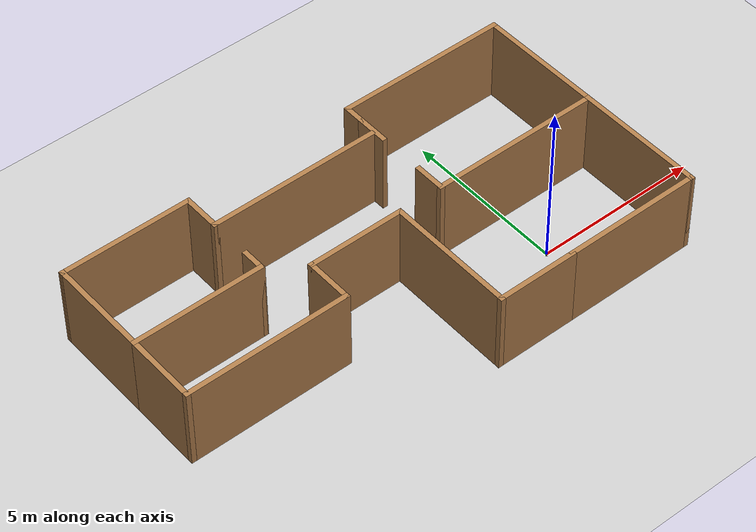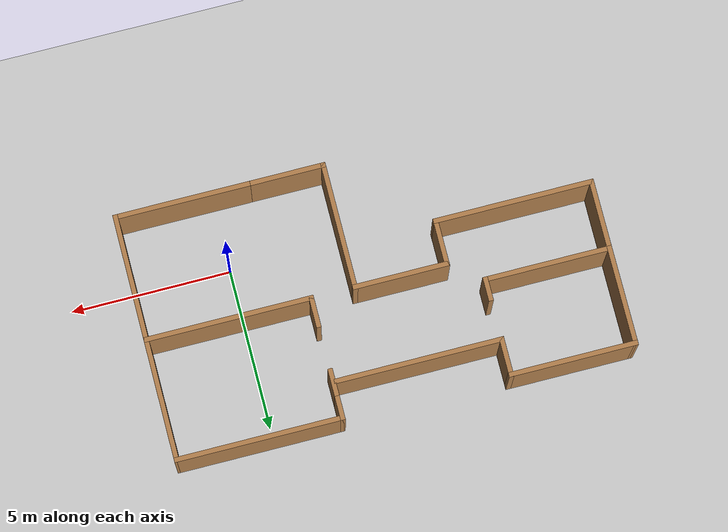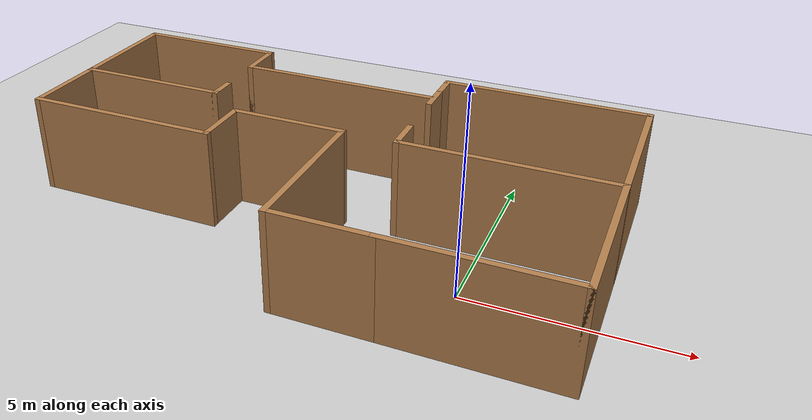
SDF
<sdf version="1.6">
 <world name="default">
  <light name="sun" type="directional">
   <pose>0 0 10 0 -0 0</pose>
   <diffuse>0.8 0.8 0.8 1</diffuse>
   <specular>0.2 0.2 0.2 1</specular>
   <attenuation>
    <range>1000</range>
    <constant>0.9</constant>
    <linear>0.01</linear>
    <quadratic>0.001</quadratic>
   </attenuation>
   <direction>-0.5 0.1 -0.9</direction>
  </light>
  <model name="ground_plane">
   <static>1</static>
   <link name="link">
    <collision name="collision">
     <geometry><plane><normal>0 0 1</normal><size>100 100</size></plane></geometry>
     <surface>
      <contact><collide_bitmask>65535</collide_bitmask></contact>
      <friction><ode><mu>100</mu><mu2>50</mu2></ode></friction>
     </surface>
    </collision>
    <visual name="visual">
     <cast_shadows>0</cast_shadows>
     <geometry><plane><normal>0 0 1</normal><size>100 100</size></plane></geometry>
     <material>
      <script><uri>file://media/materials/scripts/gazebo.material</uri><name>Gazebo/Grey</name></script>
     </material>
    </visual>
   </link>
  </model>
  <gravity>0 0 -9.8</gravity>
  <magnetic_field>6e-06 2.3e-05 -4.2e-05</magnetic_field>
  <atmosphere type="adiabatic"/>
  <physics name="default_physics" default="0" type="ode">
   <max_step_size>0.001</max_step_size>
   <real_time_factor>1</real_time_factor>
   <real_time_update_rate>1000</real_time_update_rate>
  </physics>
  <scene><ambient>0.4 0.4 0.4 1</ambient><background>0.7 0.7 0.7 1</background><shadows>1</shadows></scene>
  <spherical_coordinates>
   <surface_model>EARTH_WGS84</surface_model>
   <latitude_deg>0</latitude_deg>
   <longitude_deg>0</longitude_deg>
   <elevation>0</elevation>
   <heading_deg>0</heading_deg>
  </spherical_coordinates>
  <model name="hokuyo_laser_robot">
   <link name="base_link">
    <inertial>
     <pose>2e-06 -0 0.010705 0 -0 0</pose>
     <mass>0.362678</mass>
     <inertia>
      <ixx>0.000358572</ixx>
      <ixy>1.77542e-08</ixy>
      <ixz>-2.02106e-06</ixz>
      <iyy>0.000650122</iyy>
      <iyz>3.15097e-19</iyz>
      <izz>0.000525864</izz>
     </inertia>
    </inertial>
    <collision name="base_link_collision">
     <geometry>
      <mesh>
       <scale>0.001 0.001 0.001</scale>
       <uri>/home/hn/catkin2_ws/src/hokuyo_laser_robot/hokuyo_laser_robot_description/meshes/base_link.stl</uri>
      </mesh>
     </geometry>
     <surface><friction><ode><mu>0.2</mu><mu2>0.2</mu2></ode></friction></surface>
    </collision>
    <collision name="base_link_fixed_joint_lump__motorv1_1_collision_1">
     <geometry>
      <mesh>
       <scale>0.001 0.001 0.001</scale>
       <uri>/home/hn/catkin2_ws/src/hokuyo_laser_robot/hokuyo_laser_robot_description/meshes/motorv1_1.stl</uri>
      </mesh>
     </geometry>
     <surface><friction><ode><mu>0.2</mu><mu2>0.2</mu2></ode></friction></surface>
    </collision>
    <collision name="base_link_fixed_joint_lump__motorv2_1_collision_2">
     <geometry>
      <mesh>
       <scale>0.001 0.001 0.001</scale>
       <uri>/home/hn/catkin2_ws/src/hokuyo_laser_robot/hokuyo_laser_robot_description/meshes/motorv2_1.stl</uri>
      </mesh>
     </geometry>
     <surface><friction><ode><mu>0.2</mu><mu2>0.2</mu2></ode></friction></surface>
    </collision>
    <collision name="base_link_fixed_joint_lump__Scanning_LiDAR_v1_1_collision_3">
     <geometry>
      <mesh>
       <scale>0.001 0.001 0.001</scale>
       <uri>/home/hn/catkin2_ws/src/hokuyo_laser_robot/hokuyo_laser_robot_description/meshes/Scanning_LiDAR_v1_1.stl</uri>
      </mesh>
     </geometry>
     <surface><friction><ode><mu>0.2</mu><mu2>0.2</mu2></ode></friction></surface>
    </collision>
    <collision name="base_link_fixed_joint_lump__caster1_1_collision_4">
     <geometry>
      <mesh>
       <scale>0.001 0.001 0.001</scale>
       <uri>/home/hn/catkin2_ws/src/hokuyo_laser_robot/hokuyo_laser_robot_description/meshes/caster1_1.stl</uri>
      </mesh>
     </geometry>
    </collision>
    <collision name="base_link_fixed_joint_lump__caster1_2_collision_5">
     <geometry>
      <mesh>
       <scale>0.001 0.001 0.001</scale>
       <uri>/home/hn/catkin2_ws/src/hokuyo_laser_robot/hokuyo_laser_robot_description/meshes/caster1_2.stl</uri>
      </mesh>
     </geometry>
    </collision>
    <collision name="base_link_fixed_joint_lump__camera_link_collision_6">
     <pose>0.055 0 0.049 0 -0 0</pose>
     <geometry><box><size>0.01 0.01 0.01</size></box></geometry>
     <surface><friction><ode><mu>0.2</mu><mu2>0.2</mu2></ode></friction></surface>
    </collision>
    <visual name="base_link_visual">
     <geometry>
      <mesh>
       <scale>0.001 0.001 0.001</scale>
       <uri>/home/hn/catkin2_ws/src/hokuyo_laser_robot/hokuyo_laser_robot_description/meshes/base_link.stl</uri>
      </mesh>
     </geometry>
     <material>
      <script><name>Gazebo/Black</name><uri>file://media/materials/scripts/gazebo.material</uri></script>
     </material>
    </visual>
    <visual name="base_link_fixed_joint_lump__motorv1_1_visual_1">
     <geometry>
      <mesh>
       <scale>0.001 0.001 0.001</scale>
       <uri>/home/hn/catkin2_ws/src/hokuyo_laser_robot/hokuyo_laser_robot_description/meshes/motorv1_1.stl</uri>
      </mesh>
     </geometry>
     <material>
      <script><name>Gazebo/Orange</name><uri>file://media/materials/scripts/gazebo.material</uri></script>
     </material>
    </visual>
    <visual name="base_link_fixed_joint_lump__motorv2_1_visual_2">
     <geometry>
      <mesh>
       <scale>0.001 0.001 0.001</scale>
       <uri>/home/hn/catkin2_ws/src/hokuyo_laser_robot/hokuyo_laser_robot_description/meshes/motorv2_1.stl</uri>
      </mesh>
     </geometry>
     <material>
      <script><name>Gazebo/Orange</name><uri>file://media/materials/scripts/gazebo.material</uri></script>
     </material>
    </visual>
    <visual name="base_link_fixed_joint_lump__Scanning_LiDAR_v1_1_visual_3">
     <geometry>
      <mesh>
       <scale>0.001 0.001 0.001</scale>
       <uri>/home/hn/catkin2_ws/src/hokuyo_laser_robot/hokuyo_laser_robot_description/meshes/Scanning_LiDAR_v1_1.stl</uri>
      </mesh>
     </geometry>
     <material>
      <script><name>Gazebo/Orange</name><uri>file://media/materials/scripts/gazebo.material</uri></script>
     </material>
    </visual>
    <visual name="base_link_fixed_joint_lump__caster1_1_visual_4">
     <geometry>
      <mesh>
       <scale>0.001 0.001 0.001</scale>
       <uri>/home/hn/catkin2_ws/src/hokuyo_laser_robot/hokuyo_laser_robot_description/meshes/caster1_1.stl</uri>
      </mesh>
     </geometry>
    </visual>
    <visual name="base_link_fixed_joint_lump__caster1_2_visual_5">
     <geometry>
      <mesh>
       <scale>0.001 0.001 0.001</scale>
       <uri>/home/hn/catkin2_ws/src/hokuyo_laser_robot/hokuyo_laser_robot_description/meshes/caster1_2.stl</uri>
      </mesh>
     </geometry>
    </visual>
    <visual name="base_link_fixed_joint_lump__camera_link_visual_6">
     <pose>0.055 0 0.049 0 -0 0</pose>
     <geometry><box><size>0.01 0.01 0.01</size></box></geometry>
     <material>
      <script><name>Gazebo/Green</name><uri>file://media/materials/scripts/gazebo.material</uri></script>
     </material>
    </visual>
    <sensor name="head_hokuyo_sensor" type="ray">
     <visualize>0</visualize>
     <update_rate>40</update_rate>
     <ray>
      <scan>
       <horizontal>
        <samples>720</samples>
        <resolution>1</resolution>
        <min_angle>-1.5708</min_angle>
        <max_angle>1.5708</max_angle>
       </horizontal>
       <vertical><samples>1</samples><min_angle>0</min_angle><max_angle>0</max_angle></vertical>
      </scan>
      <range><min>0.1</min><max>30</max><resolution>0.01</resolution></range>
      <noise><type>gaussian</type><mean>0</mean><stddev>0.01</stddev></noise>
     </ray>
     <plugin name="gazebo_ros_head_hokuyo_controller" filename="libgazebo_ros_laser.so">
      <topicName>/mybot/laser_scan</topicName>
      <frameName>Scanning_LiDAR_v1_1</frameName>
      <robotNamespace>/</robotNamespace>
     </plugin>
     <pose>0 0 0.115 0 -0 0</pose>
    </sensor>
    <self_collide>1</self_collide>
    <sensor name="camera1" type="camera">
     <update_rate>30</update_rate>
     <camera name="head">
      <horizontal_fov>1.39626</horizontal_fov>
      <image><width>800</width><height>800</height><format>R8G8B8</format></image>
      <clip><near>0.02</near><far>300</far></clip>
      <noise><type>gaussian</type><mean>0</mean><stddev>0.007</stddev></noise>
     </camera>
     <plugin name="camera_controller" filename="libgazebo_ros_camera.so">
      <alwaysOn>1</alwaysOn>
      <updateRate>0.0</updateRate>
      <cameraName>hokuyo/camera1</cameraName>
      <imageTopicName>image_raw</imageTopicName>
      <cameraInfoTopicName>camera_info</cameraInfoTopicName>
      <frameName>camera_link</frameName>
      <hackBaseline>0.07</hackBaseline>
      <distortionK1>0.0</distortionK1>
      <distortionK2>0.0</distortionK2>
      <distortionK3>0.0</distortionK3>
      <distortionT1>0.0</distortionT1>
      <distortionT2>0.0</distortionT2>
      <robotNamespace>/</robotNamespace>
     </plugin>
     <pose>0.055 0 0.049 0 -0 0</pose>
    </sensor>
   </link>
   <link name="wheelv2_1">
    <pose>0 0.05 0.00562 0 -0 0</pose>
    <inertial>
     <mass>0.127075</mass>
     <inertia><ixx>2.1e-05</ixx><ixy>0</ixy><ixz>0</ixz><iyy>3.7e-05</iyy><iyz>0</iyz><izz>2.1e-05</izz></inertia>
    </inertial>
    <collision name="wheelv2_1_collision">
     <pose>0 -0.0505 -0.007 0 -0 0</pose>
     <geometry>
      <mesh>
       <scale>0.001 0.001 0.001</scale>
       <uri>/home/hn/catkin2_ws/src/hokuyo_laser_robot/hokuyo_laser_robot_description/meshes/wheelv2_1.stl</uri>
      </mesh>
     </geometry>
    </collision>
    <visual name="wheelv2_1_visual">
     <pose>0 -0.0505 -0.007 0 -0 0</pose>
     <geometry>
      <mesh>
       <scale>0.001 0.001 0.001</scale>
       <uri>/home/hn/catkin2_ws/src/hokuyo_laser_robot/hokuyo_laser_robot_description/meshes/wheelv2_1.stl</uri>
      </mesh>
     </geometry>
     <material>
      <script><name>Gazebo/Green</name><uri>file://media/materials/scripts/gazebo.material</uri></script>
     </material>
    </visual>
   </link>
   <joint name="left_wheel_joint" type="revolute">
    <child>wheelv2_1</child>
    <parent>base_link</parent>
    <axis>
     <xyz>0 1 0</xyz>
     <limit><lower>-1e+16</lower><upper>1e+16</upper></limit>
     <dynamics><spring_reference>0</spring_reference><spring_stiffness>0</spring_stiffness></dynamics>
     <use_parent_model_frame>1</use_parent_model_frame>
    </axis>
   </joint>
   <link name="wheelv1_1">
    <pose>0 -0.05 0.00562 0 -0 0</pose>
    <inertial>
     <mass>0.127075</mass>
     <inertia><ixx>2.1e-05</ixx><ixy>0</ixy><ixz>0</ixz><iyy>3.7e-05</iyy><iyz>0</iyz><izz>2.1e-05</izz></inertia>
    </inertial>
    <collision name="wheelv1_1_collision">
     <pose>0 0.0505 -0.007 0 -0 0</pose>
     <geometry>
      <mesh>
       <scale>0.001 0.001 0.001</scale>
       <uri>/home/hn/catkin2_ws/src/hokuyo_laser_robot/hokuyo_laser_robot_description/meshes/wheelv1_1.stl</uri>
      </mesh>
     </geometry>
    </collision>
    <visual name="wheelv1_1_visual">
     <pose>0 0.0505 -0.007 0 -0 0</pose>
     <geometry>
      <mesh>
       <scale>0.001 0.001 0.001</scale>
       <uri>/home/hn/catkin2_ws/src/hokuyo_laser_robot/hokuyo_laser_robot_description/meshes/wheelv1_1.stl</uri>
      </mesh>
     </geometry>
     <material>
      <script><name>Gazebo/Green</name><uri>file://media/materials/scripts/gazebo.material</uri></script>
     </material>
    </visual>
   </link>
   <joint name="right_wheel_joint" type="revolute">
    <child>wheelv1_1</child>
    <parent>base_link</parent>
    <axis>
     <xyz>0 1 0</xyz>
     <limit><lower>-1e+16</lower><upper>1e+16</upper></limit>
     <dynamics><spring_reference>0</spring_reference><spring_stiffness>0</spring_stiffness></dynamics>
     <use_parent_model_frame>1</use_parent_model_frame>
    </axis>
   </joint>
   <static>0</static>
   <plugin name="hokuyo_laser_robot_controller" filename="libgazebo_ros_diff_drive.so">
    <commandTopic>cmd_vel</commandTopic>
    <odometryTopic>odom</odometryTopic>
    <odometryFrame>odom</odometryFrame>
    <odometrySource>world</odometrySource>
    <publishOdomTF>1</publishOdomTF>
    <robotBaseFrame>base_link</robotBaseFrame>
    <publishWheelTF>0</publishWheelTF>
    <publishTf>1</publishTf>
    <publishWheelJointState>1</publishWheelJointState>
    <legacyMode>0</legacyMode>
    <updateRate>30</updateRate>
    <leftJoint>left_wheel_joint</leftJoint>
    <rightJoint>right_wheel_joint</rightJoint>
    <wheelSeparation>0.09</wheelSeparation>
    <wheelDiameter>0.043</wheelDiameter>
    <wheelAcceleration>1</wheelAcceleration>
    <wheelTorque>40</wheelTorque>
    <rosDebugLevel>na</rosDebugLevel>
    <robotNamespace>/</robotNamespace>
   </plugin>
  </model>
  <model name="my_home">
   <pose>-4.09866 1.75454 0 0 -0 0</pose>
   <link name="Wall_0">
    <collision name="Wall_0_Collision">
     <geometry><box><size>4.25 0.15 2.5</size></box></geometry>
     <pose>0 0 1.25 0 -0 0</pose>
    </collision>
    <visual name="Wall_0_Visual">
     <pose>0 0 1.25 0 -0 0</pose>
     <geometry><box><size>4.25 0.15 2.5</size></box></geometry>
     <material>
      <script><uri>file://media/materials/scripts/gazebo.material</uri><name>Gazebo/Wood</name></script>
      <ambient>0.996078 0.47451 0.0196078 1</ambient>
     </material>
     <meta><layer>0</layer></meta>
    </visual>
    <pose>5.02866 -3.79454 0 0 -0 0</pose>
   </link>
   <link name="Wall_1">
    <collision name="Wall_1_Collision">
     <geometry><box><size>4 0.15 2.5</size></box></geometry>
     <pose>0 0 1.25 0 -0 0</pose>
    </collision>
    <visual name="Wall_1_Visual">
     <pose>0 0 1.25 0 -0 0</pose>
     <geometry><box><size>4 0.15 2.5</size></box></geometry>
     <material>
      <script><uri>file://media/materials/scripts/gazebo.material</uri><name>Gazebo/Wood</name></script>
      <ambient>0.996078 0.47451 0.0196078 1</ambient>
     </material>
     <meta><layer>0</layer></meta>
    </visual>
    <pose>7.07866 -1.86954 0 0 -0 1.5708</pose>
   </link>
   <link name="Wall_10">
    <collision name="Wall_10_Collision">
     <geometry><box><size>4 0.15 2.5</size></box></geometry>
     <pose>0 0 1.25 0 -0 0</pose>
    </collision>
    <visual name="Wall_10_Visual">
     <pose>0 0 1.25 0 -0 0</pose>
     <geometry><box><size>4 0.15 2.5</size></box></geometry>
     <material>
      <script><uri>file://media/materials/scripts/gazebo.material</uri><name>Gazebo/Wood</name></script>
      <ambient>0.996078 0.47451 0.0196078 1</ambient>
     </material>
     <meta><layer>0</layer></meta>
    </visual>
    <pose>0.628664 -1.86954 0 0 -0 1.5708</pose>
   </link>
   <link name="Wall_11">
    <collision name="Wall_11_Collision">
     <geometry><box><size>3 0.15 2.5</size></box></geometry>
     <pose>0 0 1.25 0 -0 0</pose>
    </collision>
    <visual name="Wall_11_Visual">
     <pose>0 0 1.25 0 -0 0</pose>
     <geometry><box><size>3 0.15 2.5</size></box></geometry>
     <material>
      <script><uri>file://media/materials/scripts/gazebo.material</uri><name>Gazebo/Wood</name></script>
      <ambient>0.996078 0.47451 0.0196078 1</ambient>
     </material>
     <meta><layer>0</layer></meta>
    </visual>
    <pose>-0.796336 0.055459 0 0 -0 3.14159</pose>
   </link>
   <link name="Wall_12">
    <collision name="Wall_12_Collision">
     <geometry><box><size>1.5 0.15 2.5</size></box></geometry>
     <pose>0 0 1.25 0 -0 0</pose>
    </collision>
    <visual name="Wall_12_Visual">
     <pose>0 0 1.25 0 -0 0</pose>
     <geometry><box><size>1.5 0.15 2.5</size></box></geometry>
     <material>
      <script><uri>file://media/materials/scripts/gazebo.material</uri><name>Gazebo/Wood</name></script>
      <ambient>0.996078 0.47451 0.0196078 1</ambient>
     </material>
     <meta><layer>0</layer></meta>
    </visual>
    <pose>-2.22134 -0.619541 0 0 -0 -1.5708</pose>
   </link>
   <link name="Wall_13">
    <collision name="Wall_13_Collision">
     <geometry><box><size>5 0.15 2.5</size></box></geometry>
     <pose>0 0 1.25 0 -0 0</pose>
    </collision>
    <visual name="Wall_13_Visual">
     <pose>0 0 1.25 0 -0 0</pose>
     <geometry><box><size>5 0.15 2.5</size></box></geometry>
     <material>
      <script><uri>file://media/materials/scripts/gazebo.material</uri><name>Gazebo/Wood</name></script>
      <ambient>0.996078 0.47451 0.0196078 1</ambient>
     </material>
     <meta><layer>0</layer></meta>
    </visual>
    <pose>-4.64634 -1.29454 0 0 -0 3.14159</pose>
   </link>
   <link name="Wall_14">
    <collision name="Wall_14_Collision">
     <geometry><box><size>2.25 0.15 2.5</size></box></geometry>
     <pose>0 0 1.25 0 -0 0</pose>
    </collision>
    <visual name="Wall_14_Visual">
     <pose>0 0 1.25 0 -0 0</pose>
     <geometry><box><size>2.25 0.15 2.5</size></box></geometry>
     <material>
      <script><uri>file://media/materials/scripts/gazebo.material</uri><name>Gazebo/Wood</name></script>
      <ambient>0.996078 0.47451 0.0196078 1</ambient>
     </material>
     <meta><layer>0</layer></meta>
    </visual>
    <pose>-7.07134 -0.244541 0 0 -0 1.5708</pose>
   </link>
   <link name="Wall_15">
    <collision name="Wall_15_Collision">
     <geometry><box><size>4 0.15 2.5</size></box></geometry>
     <pose>0 0 1.25 0 -0 0</pose>
    </collision>
    <visual name="Wall_15_Visual">
     <pose>0 0 1.25 0 -0 0</pose>
     <geometry><box><size>4 0.15 2.5</size></box></geometry>
     <material>
      <script><uri>file://media/materials/scripts/gazebo.material</uri><name>Gazebo/Wood</name></script>
      <ambient>0.996078 0.47451 0.0196078 1</ambient>
     </material>
     <meta><layer>0</layer></meta>
    </visual>
    <pose>-5.14634 0.805459 0 0 -0 0</pose>
   </link>
   <link name="Wall_16">
    <collision name="Wall_16_Collision">
     <geometry><box><size>0.75 0.15 2.5</size></box></geometry>
     <pose>0 0 1.25 0 -0 0</pose>
    </collision>
    <visual name="Wall_16_Visual">
     <pose>0 0 1.25 0 -0 0</pose>
     <geometry><box><size>0.75 0.15 2.5</size></box></geometry>
     <material>
      <script><uri>file://media/materials/scripts/gazebo.material</uri><name>Gazebo/Wood</name></script>
      <ambient>0.996078 0.47451 0.0196078 1</ambient>
     </material>
     <meta><layer>0</layer></meta>
    </visual>
    <pose>-3.22134 1.10546 0 0 -0 1.5708</pose>
   </link>
   <link name="Wall_18">
    <collision name="Wall_18_Collision">
     <geometry><box><size>1.25 0.15 2.5</size></box></geometry>
     <pose>0 0 1.25 0 -0 0</pose>
    </collision>
    <visual name="Wall_18_Visual">
     <pose>0 0 1.25 0 -0 0</pose>
     <geometry><box><size>1.25 0.15 2.5</size></box></geometry>
     <material>
      <script><uri>file://media/materials/scripts/gazebo.material</uri><name>Gazebo/Wood</name></script>
      <ambient>0.996078 0.47451 0.0196078 1</ambient>
     </material>
     <meta><layer>0</layer></meta>
    </visual>
    <pose>-3.2286 3.23358 0 0 -0 1.5708</pose>
   </link>
   <link name="Wall_19">
    <collision name="Wall_19_Collision">
     <geometry><box><size>4 0.15 2.5</size></box></geometry>
     <pose>0 0 1.25 0 -0 0</pose>
    </collision>
    <visual name="Wall_19_Visual">
     <pose>0 0 1.25 0 -0 0</pose>
     <geometry><box><size>4 0.15 2.5</size></box></geometry>
     <material>
      <script><uri>file://media/materials/scripts/gazebo.material</uri><name>Gazebo/Wood</name></script>
      <ambient>0.996078 0.47451 0.0196078 1</ambient>
     </material>
     <meta><layer>0</layer></meta>
    </visual>
    <pose>-5.1536 3.78358 0 0 -0 3.14159</pose>
   </link>
   <link name="Wall_2">
    <collision name="Wall_2_Collision">
     <geometry><box><size>5.25 0.15 2.5</size></box></geometry>
     <pose>0 0 1.25 0 -0 0</pose>
    </collision>
    <visual name="Wall_2_Visual">
     <pose>0 0 1.25 0 -0 0</pose>
     <geometry><box><size>5.25 0.15 2.5</size></box></geometry>
     <material>
      <script><uri>file://media/materials/scripts/gazebo.material</uri><name>Gazebo/Wood</name></script>
      <ambient>0.996078 0.47451 0.0196078 1</ambient>
     </material>
     <meta><layer>0</layer></meta>
    </visual>
    <pose>4.52866 0.055459 0 0 -0 3.14159</pose>
   </link>
   <link name="Wall_20">
    <collision name="Wall_20_Collision">
     <geometry><box><size>3.12813 0.15 2.5</size></box></geometry>
     <pose>0 0 1.25 0 -0 0</pose>
    </collision>
    <visual name="Wall_20_Visual">
     <pose>0 0 1.25 0 -0 0</pose>
     <geometry><box><size>3.12813 0.15 2.5</size></box></geometry>
     <material>
      <script><uri>file://media/materials/scripts/gazebo.material</uri><name>Gazebo/Wood</name></script>
      <ambient>0.996078 0.47451 0.0196078 1</ambient>
     </material>
     <meta><layer>0</layer></meta>
    </visual>
    <pose>-7.07497 2.29452 0 0 -0 -1.56836</pose>
   </link>
   <link name="Wall_22">
    <collision name="Wall_22_Collision">
     <geometry><box><size>5.25 0.15 2.5</size></box></geometry>
     <pose>0 0 1.25 0 -0 0</pose>
    </collision>
    <visual name="Wall_22_Visual">
     <pose>0 0 1.25 0 -0 0</pose>
     <geometry><box><size>5.25 0.15 2.5</size></box></geometry>
     <material>
      <script><uri>file://media/materials/scripts/gazebo.material</uri><name>Gazebo/Wood</name></script>
      <ambient>0.996078 0.47451 0.0196078 1</ambient>
     </material>
     <meta><layer>0</layer></meta>
    </visual>
    <pose>-0.678601 2.68358 0 0 -0 0</pose>
   </link>
   <link name="Wall_24">
    <collision name="Wall_24_Collision">
     <geometry><box><size>0.75 0.15 2.5</size></box></geometry>
     <pose>0 0 1.25 0 -0 0</pose>
    </collision>
    <visual name="Wall_24_Visual">
     <pose>0 0 1.25 0 -0 0</pose>
     <geometry><box><size>0.75 0.15 2.5</size></box></geometry>
     <material>
      <script><uri>file://media/materials/scripts/gazebo.material</uri><name>Gazebo/Wood</name></script>
      <ambient>0.996078 0.47451 0.0196078 1</ambient>
     </material>
     <meta><layer>0</layer></meta>
    </visual>
    <pose>1.97263 3.49442 0 0 -0 1.5708</pose>
   </link>
   <link name="Wall_25">
    <collision name="Wall_25_Collision">
     <geometry><box><size>5.25 0.15 2.5</size></box></geometry>
     <pose>0 0 1.25 0 -0 0</pose>
    </collision>
    <visual name="Wall_25_Visual">
     <pose>0 0 1.25 0 -0 0</pose>
     <geometry><box><size>5.25 0.15 2.5</size></box></geometry>
     <material>
      <script><uri>file://media/materials/scripts/gazebo.material</uri><name>Gazebo/Wood</name></script>
      <ambient>0.996078 0.47451 0.0196078 1</ambient>
     </material>
     <meta><layer>0</layer></meta>
    </visual>
    <pose>4.52263 3.79442 0 0 -0 0</pose>
   </link>
   <link name="Wall_26">
    <collision name="Wall_26_Collision">
     <geometry><box><size>3.88897 0.15 2.5</size></box></geometry>
     <pose>0 0 1.25 0 -0 0</pose>
    </collision>
    <visual name="Wall_26_Visual">
     <pose>0 0 1.25 0 -0 0</pose>
     <geometry><box><size>3.88897 0.15 2.5</size></box></geometry>
     <material>
      <script><uri>file://media/materials/scripts/gazebo.material</uri><name>Gazebo/Wood</name></script>
      <ambient>0.996078 0.47451 0.0196078 1</ambient>
     </material>
     <meta><layer>0</layer></meta>
    </visual>
    <pose>7.07564 1.92494 0 0 -0 -1.56918</pose>
   </link>
   <link name="Wall_3">
    <collision name="Wall_3_Collision">
     <geometry><box><size>1 0.15 2.5</size></box></geometry>
     <pose>0 0 1.25 0 -0 0</pose>
    </collision>
    <visual name="Wall_3_Visual">
     <pose>0 0 1.25 0 -0 0</pose>
     <geometry><box><size>1 0.15 2.5</size></box></geometry>
     <material>
      <script><uri>file://media/materials/scripts/gazebo.material</uri><name>Gazebo/Wood</name></script>
      <ambient>0.996078 0.47451 0.0196078 1</ambient>
     </material>
     <meta><layer>0</layer></meta>
    </visual>
    <pose>1.97866 0.480459 0 0 -0 1.5708</pose>
   </link>
   <link name="Wall_7">
    <collision name="Wall_7_Collision">
     <geometry><box><size>1 0.15 2.5</size></box></geometry>
     <pose>0 0 1.25 0 -0 0</pose>
    </collision>
    <visual name="Wall_7_Visual">
     <pose>0 0 1.25 0 -0 0</pose>
     <geometry><box><size>1 0.15 2.5</size></box></geometry>
     <material>
      <script><uri>file://media/materials/scripts/gazebo.material</uri><name>Gazebo/Wood</name></script>
      <ambient>0.996078 0.47451 0.0196078 1</ambient>
     </material>
     <meta><layer>0</layer></meta>
    </visual>
    <pose>1.97263 2.76942 0 0 -0 1.5708</pose>
   </link>
   <link name="Wall_9">
    <collision name="Wall_9_Collision">
     <geometry><box><size>2.5 0.15 2.5</size></box></geometry>
     <pose>0 0 1.25 0 -0 0</pose>
    </collision>
    <visual name="Wall_9_Visual">
     <pose>0 0 1.25 0 -0 0</pose>
     <geometry><box><size>2.5 0.15 2.5</size></box></geometry>
     <material>
      <script><uri>file://media/materials/scripts/gazebo.material</uri><name>Gazebo/Wood</name></script>
      <ambient>0.996078 0.47451 0.0196078 1</ambient>
     </material>
     <meta><layer>0</layer></meta>
    </visual>
    <pose>1.80366 -3.79454 0 0 -0 3.14159</pose>
   </link>
   <static>1</static>
  </model>
 </world>
</sdf>
